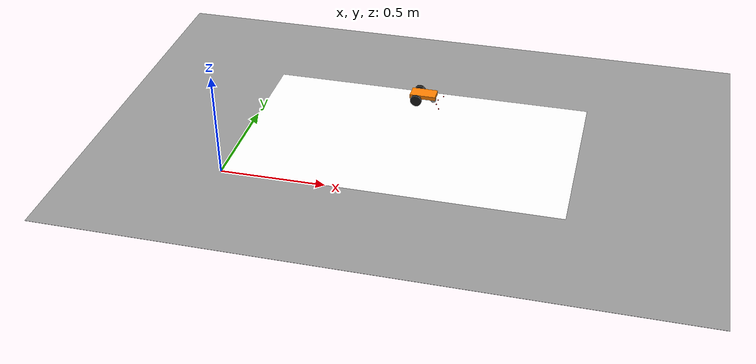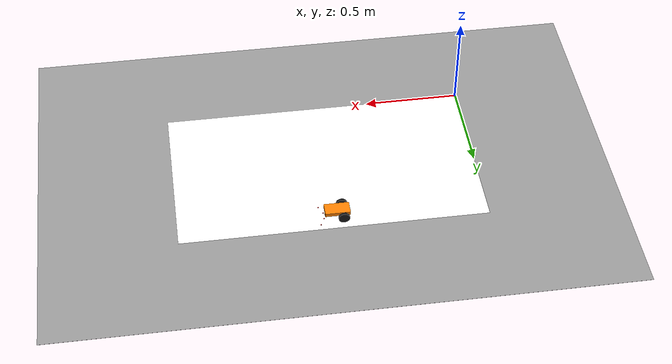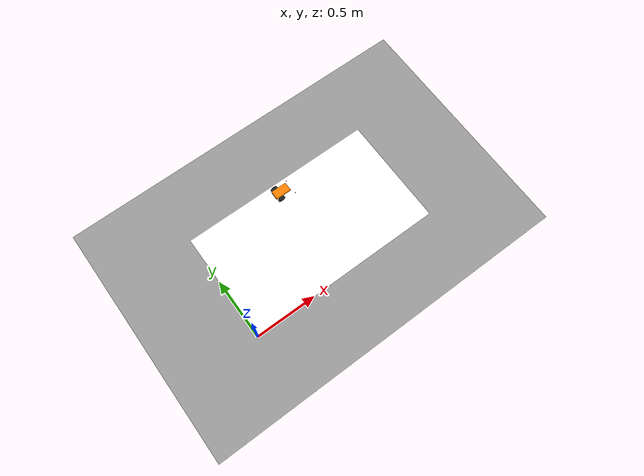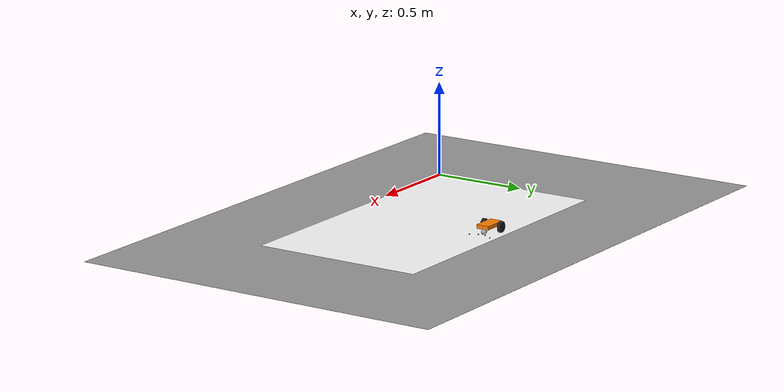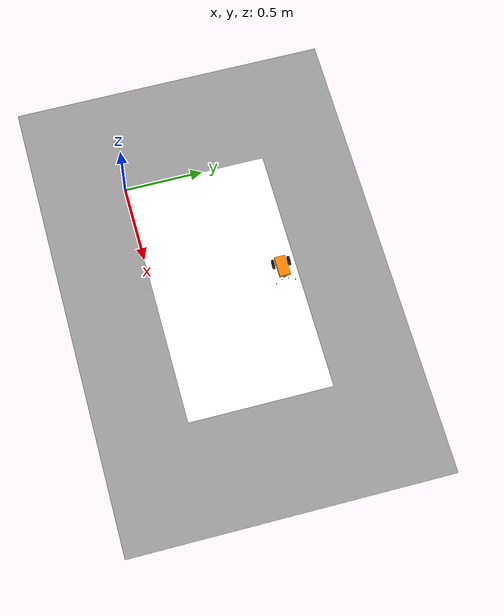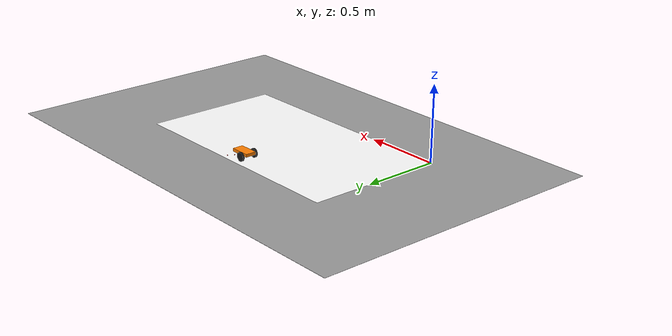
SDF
<?xml version="1.0"?>
<!-- ライントレーサの走行するワールド（コースと車体） -->
<sdf version="1.9">
  <world name="lf_course">
    <physics name="1ms" type="ignored">
      <max_step_size>0.001</max_step_size>
      <real_time_factor>1.0</real_time_factor>
    </physics>
    <plugin filename="gz-sim-physics-system" name="gz::sim::systems::Physics"/>
    <plugin filename="gz-sim-user-commands-system" name="gz::sim::systems::UserCommands"/>
    <plugin filename="gz-sim-scene-broadcaster-system" name="gz::sim::systems::SceneBroadcaster"/>
    <plugin filename="gz-sim-sensors-system" name="gz::sim::systems::Sensors">
      <render_engine>ogre2</render_engine>
    </plugin>

    <scene>
      <ambient>0.8 0.8 0.8 1</ambient>
      <background>0.7 0.8 0.9 1</background>
      <shadows>false</shadows>
    </scene>

    <light type="directional" name="sun">
      <cast_shadows>false</cast_shadows>
      <pose>0 0 10 0 0 0</pose>
      <diffuse>0.9 0.9 0.9 1</diffuse>
      <specular>0.1 0.1 0.1 1</specular>
      <direction>-0.2 0.1 -0.9</direction>
    </light>

    <include>
      <uri>model://lf_course</uri>
      <pose>0 0 0 0 0 0</pose>
    </include>

    <!-- 初期位置は mbd_phs3 と同じ（上辺の直線の上，右向き） -->
    <include>
      <uri>model://line_follower</uri>
      <name>line_follower</name>
      <pose>0.75 0.81 0 0 0 0</pose>
    </include>
  </world>
</sdf>

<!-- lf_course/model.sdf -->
<!--
  ライントレースのコース
  コース画像（2.5 mm/pixel，640 x 360 pixel 相当）を 1.6 m x 0.9 m の床に貼る．
  座標は mbd_phs3 と同じ（x 軸が右，y 軸が上，原点はコースの左下）．
-->
<sdf version="1.9">
  <model name="lf_course">
    <static>true</static>
    <link name="floor">
      <collision name="collision">
        <pose>0.8 0.45 -0.005 0 0 0</pose>
        <geometry>
          <box><size>3.0 2.0 0.01</size></box>
        </geometry>
        <surface>
          <friction><ode><mu>1.0</mu><mu2>1.0</mu2></ode></friction>
        </surface>
      </collision>
      <visual name="course">
        <pose>0 0 0.0005 0 0 0</pose>
        <geometry>
          <mesh><uri>model://lf_course/meshes/course.obj</uri></mesh>
        </geometry>
        <material>
          <ambient>1 1 1 1</ambient>
          <diffuse>1 1 1 1</diffuse>
          <specular>0 0 0 1</specular>
          <pbr>
            <metal>
              <albedo_map>model://lf_course/materials/textures/course2025.png</albedo_map>
              <roughness>1.0</roughness>
              <metalness>0.0</metalness>
            </metal>
          </pbr>
        </material>
      </visual>
      <visual name="surround">
        <pose>0.8 0.45 -0.0005 0 0 0</pose>
        <geometry>
          <box><size>3.0 2.0 0.001</size></box>
        </geometry>
        <material>
          <ambient>0.6 0.6 0.6 1</ambient>
          <diffuse>0.6 0.6 0.6 1</diffuse>
        </material>
      </visual>
    </link>
  </model>
</sdf>

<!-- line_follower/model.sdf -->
<sdf version="1.9">
  <model name="line_follower">

    <link name="base_link">
      <pose>0 0 0.029 0 0 0</pose>
      <inertial>
        <pose>0.03 0 0.012 0 0 0</pose>
        <mass>0.30</mass>
        <inertia>
          <ixx>0.00014</ixx><iyy>0.00043</iyy><izz>0.00055</izz>
          <ixy>0</ixy><ixz>0</ixz><iyz>0</iyz>
        </inertia>
      </inertial>
      <visual name="chassis">
        <pose>0.03 0 0.012 0 0 0</pose>
        <geometry><box><size>0.13 0.07 0.02</size></box></geometry>
        <material>
          <ambient>1.0 0.5 0.0 1</ambient>
          <diffuse>1.0 0.5 0.0 1</diffuse>
        </material>
      </visual>
      <collision name="chassis">
        <pose>0.03 0 0.012 0 0 0</pose>
        <geometry><box><size>0.13 0.07 0.02</size></box></geometry>
      </collision>
      <!-- フォトリフレクタの位置の目印（表示のみ） -->
      <visual name="pr1"><pose>0.120 0.060 -0.026 0 0 0</pose>
        <geometry><sphere><radius>0.003</radius></sphere></geometry>
        <material><ambient>0.8 0 0 1</ambient><diffuse>0.8 0 0 1</diffuse></material></visual>
      <visual name="pr2"><pose>0.100 0.020 -0.026 0 0 0</pose>
        <geometry><sphere><radius>0.003</radius></sphere></geometry>
        <material><ambient>0.8 0 0 1</ambient><diffuse>0.8 0 0 1</diffuse></material></visual>
      <visual name="pr3"><pose>0.100 -0.020 -0.026 0 0 0</pose>
        <geometry><sphere><radius>0.003</radius></sphere></geometry>
        <material><ambient>0.8 0 0 1</ambient><diffuse>0.8 0 0 1</diffuse></material></visual>
      <visual name="pr4"><pose>0.120 -0.060 -0.026 0 0 0</pose>
        <geometry><sphere><radius>0.003</radius></sphere></geometry>
        <material><ambient>0.8 0 0 1</ambient><diffuse>0.8 0 0 1</diffuse></material></visual>
    </link>

    <!-- 左の車輪 -->
    <link name="left_wheel">
      <pose>0 0.05 0.029 0 0 0</pose>
      <inertial>
        <mass>0.02</mass>
        <inertia>
          <ixx>0.0000045</ixx><iyy>0.0000084</iyy><izz>0.0000045</izz>
          <ixy>0</ixy><ixz>0</ixz><iyz>0</iyz>
        </inertia>
      </inertial>
      <visual name="wheel">
        <pose>0 0 0 1.5708 0 0</pose>
        <geometry><cylinder><radius>0.029</radius><length>0.012</length></cylinder></geometry>
        <material><ambient>0.1 0.1 0.1 1</ambient><diffuse>0.1 0.1 0.1 1</diffuse></material>
      </visual>
      <collision name="wheel">
        <pose>0 0 0 1.5708 0 0</pose>
        <geometry><cylinder><radius>0.029</radius><length>0.012</length></cylinder></geometry>
        <surface><friction><ode><mu>1.0</mu><mu2>1.0</mu2></ode></friction></surface>
      </collision>
    </link>
    <joint name="left_wheel_joint" type="revolute">
      <parent>base_link</parent>
      <child>left_wheel</child>
      <axis><xyz expressed_in="__model__">0 1 0</xyz></axis>
    </joint>

    <!-- 右の車輪 -->
    <link name="right_wheel">
      <pose>0 -0.05 0.029 0 0 0</pose>
      <inertial>
        <mass>0.02</mass>
        <inertia>
          <ixx>0.0000045</ixx><iyy>0.0000084</iyy><izz>0.0000045</izz>
          <ixy>0</ixy><ixz>0</ixz><iyz>0</iyz>
        </inertia>
      </inertial>
      <visual name="wheel">
        <pose>0 0 0 1.5708 0 0</pose>
        <geometry><cylinder><radius>0.029</radius><length>0.012</length></cylinder></geometry>
        <material><ambient>0.1 0.1 0.1 1</ambient><diffuse>0.1 0.1 0.1 1</diffuse></material>
      </visual>
      <collision name="wheel">
        <pose>0 0 0 1.5708 0 0</pose>
        <geometry><cylinder><radius>0.029</radius><length>0.012</length></cylinder></geometry>
        <surface><friction><ode><mu>1.0</mu><mu2>1.0</mu2></ode></friction></surface>
      </collision>
    </link>
    <joint name="right_wheel_joint" type="revolute">
      <parent>base_link</parent>
      <child>right_wheel</child>
      <axis><xyz expressed_in="__model__">0 1 0</xyz></axis>
    </joint>

    <!-- ボールキャスター（摩擦なし） -->
    <link name="caster">
      <pose>0.08 0 0.015 0 0 0</pose>
      <inertial>
        <mass>0.01</mass>
        <inertia>
          <ixx>0.0000009</ixx><iyy>0.0000009</iyy><izz>0.0000009</izz>
          <ixy>0</ixy><ixz>0</ixz><iyz>0</iyz>
        </inertia>
      </inertial>
      <visual name="ball">
        <geometry><sphere><radius>0.015</radius></sphere></geometry>
        <material><ambient>0.7 0.7 0.7 1</ambient><diffuse>0.7 0.7 0.7 1</diffuse></material>
      </visual>
      <collision name="ball">
        <geometry><sphere><radius>0.015</radius></sphere></geometry>
        <surface><friction><ode><mu>0.0</mu><mu2>0.0</mu2></ode></friction></surface>
      </collision>
    </link>
    <joint name="caster_joint" type="fixed">
      <parent>base_link</parent>
      <child>caster</child>
    </joint>

    <!-- フォトリフレクタの代わりのカメラ（床を真下に見る） -->
    <link name="photoref_camera_link">
      <pose>0.11 0 0.15 0 1.5708 0</pose>
      <inertial>
        <mass>0.001</mass>
        <inertia>
          <ixx>0.0000001</ixx><iyy>0.0000001</iyy><izz>0.0000001</izz>
          <ixy>0</ixy><ixz>0</ixz><iyz>0</iyz>
        </inertia>
      </inertial>
      <sensor name="photoref_camera" type="camera">
        <camera>
          <!-- 高さ 0.15 m から床の幅 0.16 m が写る画角：2 atan(0.08/0.15) -->
          <horizontal_fov>1.0808</horizontal_fov>
          <image>
            <width>64</width>
            <height>8</height>
            <format>R8G8B8</format>
          </image>
          <clip><near>0.01</near><far>1.0</far></clip>
        </camera>
        <always_on>1</always_on>
        <update_rate>30</update_rate>
        <topic>/photoref_camera</topic>
      </sensor>
    </link>
    <joint name="photoref_camera_joint" type="fixed">
      <parent>base_link</parent>
      <child>photoref_camera_link</child>
    </joint>

    <!-- 左右の車輪の回転速度による駆動（/cmd_vel） -->
    <plugin filename="gz-sim-diff-drive-system" name="gz::sim::systems::DiffDrive">
      <left_joint>left_wheel_joint</left_joint>
      <right_joint>right_wheel_joint</right_joint>
      <wheel_separation>0.10</wheel_separation>
      <wheel_radius>0.029</wheel_radius>
      <topic>/model/line_follower/cmd_vel</topic>
      <odom_topic>/model/line_follower/diff_drive_odometry</odom_topic>
      <max_linear_acceleration>2.0</max_linear_acceleration>
      <min_linear_acceleration>-2.0</min_linear_acceleration>
      <max_angular_acceleration>40.0</max_angular_acceleration>
      <min_angular_acceleration>-40.0</min_angular_acceleration>
    </plugin>

    <!-- 車体の位置と姿勢（コースの座標系 map） -->
    <plugin filename="gz-sim-odometry-publisher-system" name="gz::sim::systems::OdometryPublisher">
      <odom_frame>map</odom_frame>
      <robot_base_frame>base_link</robot_base_frame>
      <odom_publish_frequency>20</odom_publish_frequency>
      <odom_topic>/model/line_follower/odometry</odom_topic>
    </plugin>

    <!-- 車輪の関節の角度と角速度 -->
    <plugin filename="gz-sim-joint-state-publisher-system" name="gz::sim::systems::JointStatePublisher">
      <topic>/model/line_follower/joint_state</topic>
      <joint_name>left_wheel_joint</joint_name>
      <joint_name>right_wheel_joint</joint_name>
    </plugin>

  </model>
</sdf>
